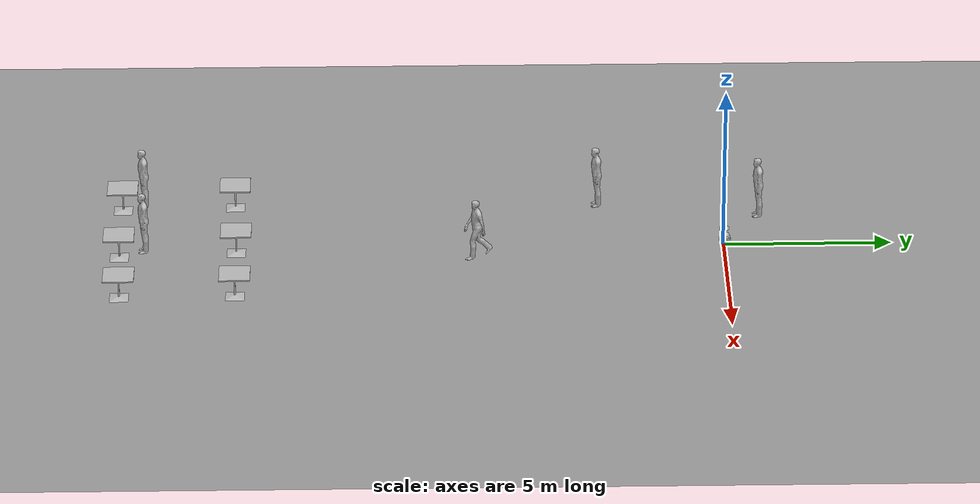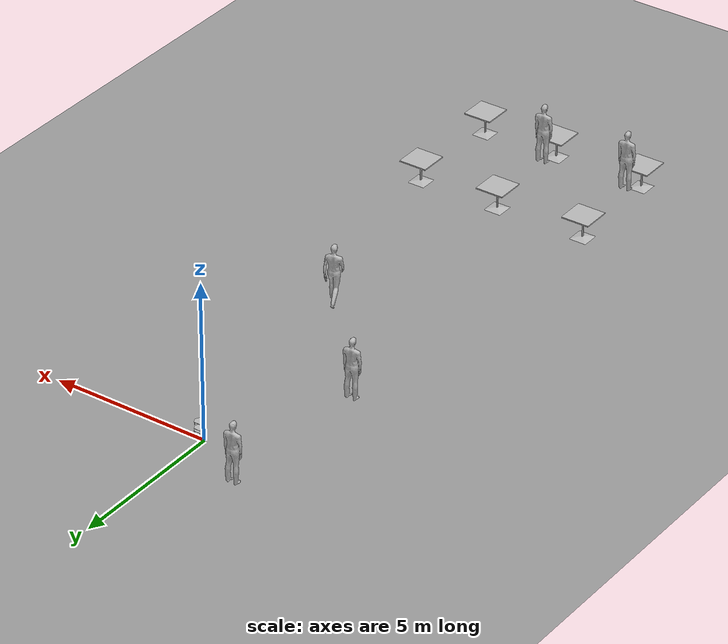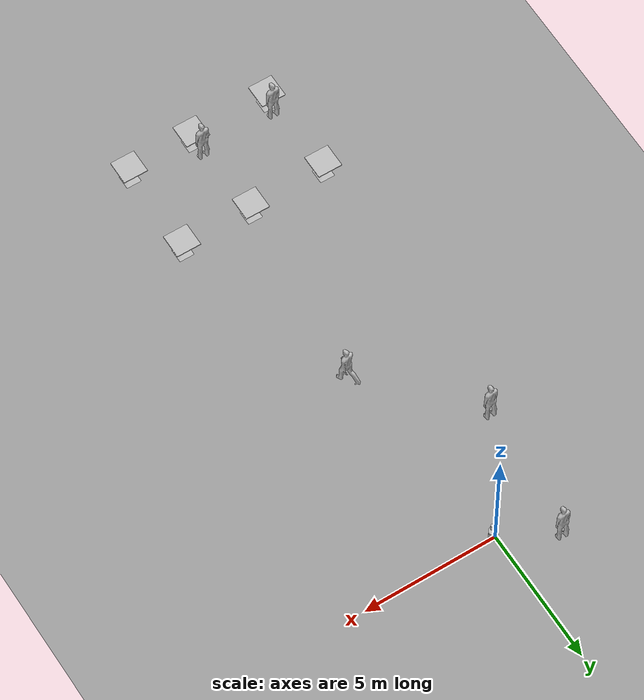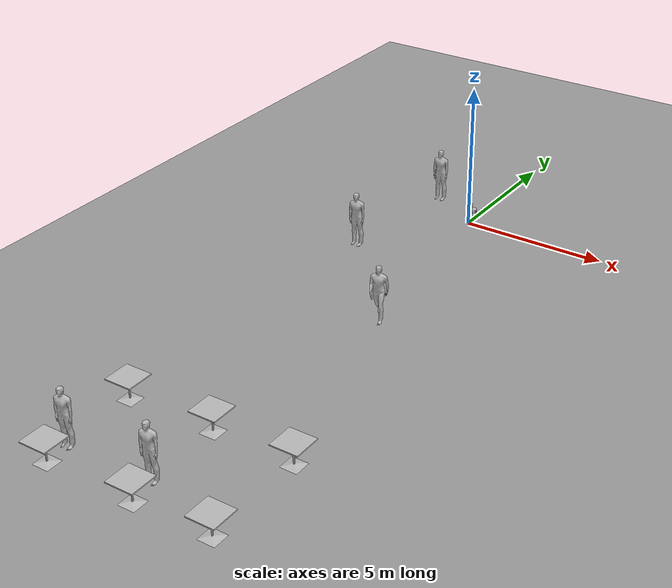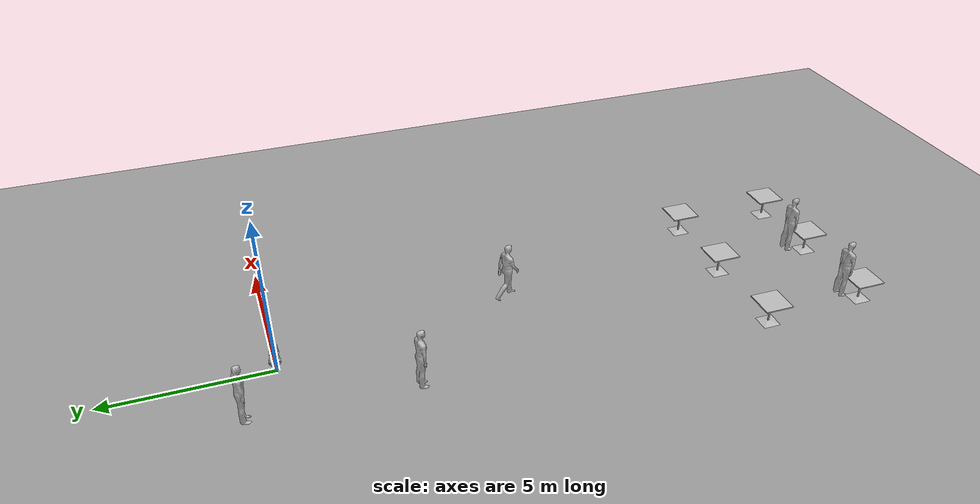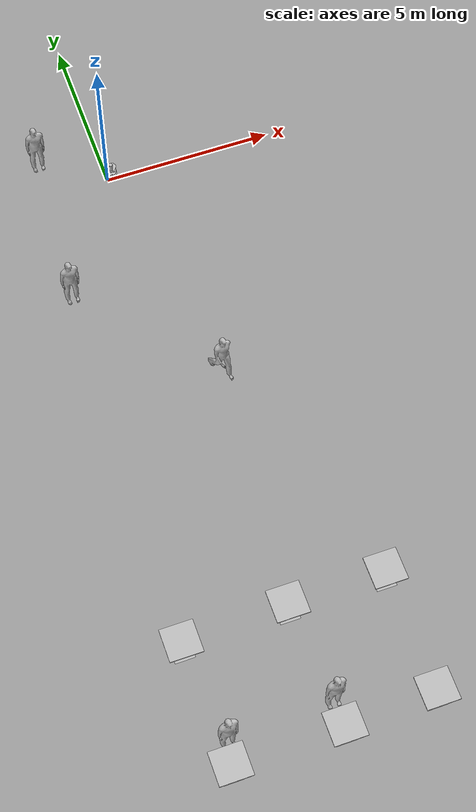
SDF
<sdf version="1.6">
 <world name="default">
  <light name="sun" type="directional">
   <pose>0 0 10 0 -0 0</pose>
   <diffuse>0.8 0.8 0.8 1</diffuse>
   <specular>0.2 0.2 0.2 1</specular>
   <attenuation>
    <range>1000</range>
    <constant>0.9</constant>
    <linear>0.01</linear>
    <quadratic>0.001</quadratic>
   </attenuation>
   <direction>0.5 0.1 -0.9</direction>
  </light>
  <scene><ambient>0.4 0.4 0.4 1</ambient><background>0.7 0.7 0.7 1</background><shadows>1</shadows></scene>
  <physics name="default_physics" default="0" type="ode">
   <max_step_size>0.01</max_step_size>
   <real_time_factor>1</real_time_factor>
   <real_time_update_rate>100</real_time_update_rate>
  </physics>
  <model name="ground_plane_0">
   <static>1</static>
   <link name="link">
    <collision name="collision">
     <geometry><plane><normal>0 0 1</normal><size>100 100</size></plane></geometry>
     <surface><friction><ode><mu>100</mu><mu2>50</mu2></ode></friction></surface>
    </collision>
    <visual name="visual">
     <cast_shadows>0</cast_shadows>
     <geometry><plane><normal>0 0 1</normal><size>100 100</size></plane></geometry>
     <material>
      <script><uri>file://media/materials/scripts/gazebo.material</uri><name>Gazebo/Grey</name></script>
     </material>
    </visual>
    <velocity_decay><linear>0</linear><angular>0</angular></velocity_decay>
   </link>
   <pose>0.497681 0 0 0 -0 0</pose>
  </model>
  <gravity>0 0 -9.8</gravity>
  <magnetic_field>6e-06 2.3e-05 -4.2e-05</magnetic_field>
  <atmosphere type="adiabatic"/>
  <spherical_coordinates>
   <surface_model>EARTH_WGS84</surface_model>
   <latitude_deg>0</latitude_deg>
   <longitude_deg>0</longitude_deg>
   <elevation>0</elevation>
   <heading_deg>0</heading_deg>
  </spherical_coordinates>
  <model name="mobile_base">
   <link name="base_footprint">
    <inertial>
     <pose>-0.002635 -4.1e-05 0.129243 0 -0 0</pose>
     <mass>4.6973</mass>
     <inertia>
      <ixx>0.1365</ixx>
      <ixy>-2.51802e-05</ixy>
      <ixz>0.0108194</ixz>
      <iyy>0.132157</iyy>
      <iyz>4.89572e-05</iyz>
      <izz>0.0741648</izz>
     </inertia>
    </inertial>
    <collision name="base_footprint_fixed_joint_lump__base_collision">
     <pose>0 0 0.06969 0 -0 0</pose>
     <geometry><cylinder><length>0.10938</length><radius>0.178</radius></cylinder></geometry>
    </collision>
    <collision name="base_footprint_fixed_joint_lump__camera_link_collision_1">
     <pose>-0.087 -0.0015 0.2972 0 -0 0</pose>
     <geometry><box><size>0.073 0.276 0.072</size></box></geometry>
    </collision>
    <collision name="base_footprint_fixed_joint_lump__caster_back_link_collision_2">
     <pose>-0.135 0 0.0192 -1.5708 0 0</pose>
     <geometry><cylinder><length>0.0176</length><radius>0.017</radius></cylinder></geometry>
     <surface>
      <contact><ode><kp>1e+06</kp><kd>100</kd><max_vel>1</max_vel><min_depth>0.001</min_depth></ode></contact>
      <friction><ode><mu>0</mu><mu2>0</mu2></ode></friction>
     </surface>
    </collision>
    <collision name="base_footprint_fixed_joint_lump__caster_front_link_collision_3">
     <pose>0.115 0 0.0172 -1.5708 0 0</pose>
     <geometry><cylinder><length>0.0176</length><radius>0.017</radius></cylinder></geometry>
     <surface>
      <contact><ode><kp>1e+06</kp><kd>100</kd><max_vel>1</max_vel><min_depth>0.001</min_depth></ode></contact>
      <friction><ode><mu>0</mu><mu2>0</mu2></ode></friction>
     </surface>
    </collision>
    <collision name="base_footprint_fixed_joint_lump__mount_asus_xtion_pro_link_collision_4">
     <pose>-0.1024 0 0.2822 0 -0 0</pose>
     <geometry><box><size>0.033 0.276 0.012</size></box></geometry>
    </collision>
    <collision name="base_footprint_fixed_joint_lump__plate_bottom_link_collision_5">
     <pose>0 0 0.1408 0 -0 0</pose>
     <geometry><cylinder><length>0.006</length><radius>0.17</radius></cylinder></geometry>
    </collision>
    <collision name="base_footprint_fixed_joint_lump__plate_middle_link_collision_6">
     <pose>0 0 0.1976 0 -0 0</pose>
     <geometry><cylinder><length>0.006</length><radius>0.17</radius></cylinder></geometry>
    </collision>
    <collision name="base_footprint_fixed_joint_lump__plate_top_link_collision_7">
     <pose>0 0 0.4068 0 -0 0</pose>
     <geometry><cylinder><length>0.006</length><radius>0.17</radius></cylinder></geometry>
    </collision>
    <collision name="base_footprint_fixed_joint_lump__pole_bottom_0_link_collision_8">
     <pose>0.12 0.082 0.113 0 -0 0</pose>
     <geometry><cylinder><length>0.0492</length><radius>0.006</radius></cylinder></geometry>
    </collision>
    <collision name="base_footprint_fixed_joint_lump__pole_bottom_1_link_collision_9">
     <pose>0.055 0.12 0.113 0 -0 0</pose>
     <geometry><cylinder><length>0.0492</length><radius>0.006</radius></cylinder></geometry>
    </collision>
    <collision name="base_footprint_fixed_joint_lump__pole_bottom_2_link_collision_10">
     <pose>-0.055 0.12 0.113 0 -0 0</pose>
     <geometry><cylinder><length>0.0492</length><radius>0.006</radius></cylinder></geometry>
    </collision>
    <collision name="base_footprint_fixed_joint_lump__pole_bottom_3_link_collision_11">
     <pose>0.12 -0.082 0.113 0 -0 0</pose>
     <geometry><cylinder><length>0.0492</length><radius>0.006</radius></cylinder></geometry>
    </collision>
    <collision name="base_footprint_fixed_joint_lump__pole_bottom_4_link_collision_12">
     <pose>0.055 -0.12 0.113 0 -0 0</pose>
     <geometry><cylinder><length>0.0492</length><radius>0.006</radius></cylinder></geometry>
    </collision>
    <collision name="base_footprint_fixed_joint_lump__pole_bottom_5_link_collision_13">
     <pose>-0.055 -0.12 0.113 0 -0 0</pose>
     <geometry><cylinder><length>0.0492</length><radius>0.006</radius></cylinder></geometry>
    </collision>
    <collision name="base_footprint_fixed_joint_lump__pole_kinect_0_link_collision_14">
     <pose>-0.1024 0.098 0.2474 0 -0 0</pose>
     <geometry><cylinder><length>0.0936</length><radius>0.006</radius></cylinder></geometry>
    </collision>
    <collision name="base_footprint_fixed_joint_lump__pole_kinect_1_link_collision_15">
     <pose>-0.1024 -0.098 0.2474 0 -0 0</pose>
     <geometry><cylinder><length>0.0936</length><radius>0.006</radius></cylinder></geometry>
    </collision>
    <collision name="base_footprint_fixed_joint_lump__pole_middle_0_link_collision_16">
     <pose>0.0381 0.1505 0.1742 0 -0 0</pose>
     <geometry><cylinder><length>0.0608</length><radius>0.006</radius></cylinder></geometry>
    </collision>
    <collision name="base_footprint_fixed_joint_lump__pole_middle_1_link_collision_17">
     <pose>0.0381 -0.1505 0.1742 0 -0 0</pose>
     <geometry><cylinder><length>0.0608</length><radius>0.006</radius></cylinder></geometry>
    </collision>
    <collision name="base_footprint_fixed_joint_lump__pole_middle_2_link_collision_18">
     <pose>-0.0381 0.1505 0.1742 0 -0 0</pose>
     <geometry><cylinder><length>0.0608</length><radius>0.006</radius></cylinder></geometry>
    </collision>
    <collision name="base_footprint_fixed_joint_lump__pole_middle_3_link_collision_19">
     <pose>-0.0381 -0.1505 0.1742 0 -0 0</pose>
     <geometry><cylinder><length>0.0608</length><radius>0.006</radius></cylinder></geometry>
    </collision>
    <collision name="base_footprint_fixed_joint_lump__pole_top_0_link_collision_20">
     <pose>0.0381 0.1505 0.3022 0 -0 0</pose>
     <geometry><cylinder><length>0.2032</length><radius>0.006</radius></cylinder></geometry>
    </collision>
    <collision name="base_footprint_fixed_joint_lump__pole_top_1_link_collision_21">
     <pose>0.0381 -0.1505 0.3022 0 -0 0</pose>
     <geometry><cylinder><length>0.2032</length><radius>0.006</radius></cylinder></geometry>
    </collision>
    <collision name="base_footprint_fixed_joint_lump__pole_top_2_link_collision_22">
     <pose>-0.0381 0.1505 0.3022 0 -0 0</pose>
     <geometry><cylinder><length>0.2032</length><radius>0.006</radius></cylinder></geometry>
    </collision>
    <collision name="base_footprint_fixed_joint_lump__pole_top_3_link_collision_23">
     <pose>-0.0381 -0.1505 0.3022 0 -0 0</pose>
     <geometry><cylinder><length>0.2032</length><radius>0.006</radius></cylinder></geometry>
    </collision>
    <visual name="base_footprint_fixed_joint_lump__base_link_visual">
     <pose>0.001 0 0.06219 0 -0 0</pose>
     <geometry>
      <mesh><scale>1 1 1</scale><uri>/opt/ros/kinetic/share/kobuki_description/meshes/main_body.dae</uri></mesh>
     </geometry>
     <material><script><uri>__default__</uri><name>__default__</name></script></material>
    </visual>
    <visual name="base_footprint_fixed_joint_lump__camera_link_visual_1">
     <pose>-0.102 0.002 0.3012 0 -0 0</pose>
     <geometry>
      <mesh>
       <scale>1 1 1</scale>
       <uri>/opt/ros/kinetic/share/turtlebot_description/meshes/sensors/xtion_pro_camera.dae</uri>
      </mesh>
     </geometry>
     <material><script><uri>__default__</uri><name>__default__</name></script></material>
    </visual>
    <visual name="base_footprint_fixed_joint_lump__mount_asus_xtion_pro_link_visual_2">
     <pose>-0.1024 0 0.2822 -1.5708 0 0</pose>
     <geometry>
      <mesh>
       <scale>1 1 1</scale>
       <uri>/opt/ros/kinetic/share/turtlebot_description/meshes/sensors/xtion_pro_stack.dae</uri>
      </mesh>
     </geometry>
    </visual>
    <visual name="base_footprint_fixed_joint_lump__plate_bottom_link_visual_3">
     <pose>0.02364 0 0.1408 0 -0 0</pose>
     <geometry>
      <mesh>
       <scale>1 1 1</scale>
       <uri>/opt/ros/kinetic/share/turtlebot_description/meshes/stacks/hexagons/plate_bottom.dae</uri>
      </mesh>
     </geometry>
    </visual>
    <visual name="base_footprint_fixed_joint_lump__plate_middle_link_visual_4">
     <pose>-0.01364 0 0.1976 0 -0 0</pose>
     <geometry>
      <mesh>
       <scale>1 1 1</scale>
       <uri>/opt/ros/kinetic/share/turtlebot_description/meshes/stacks/hexagons/plate_middle.dae</uri>
      </mesh>
     </geometry>
    </visual>
    <visual name="base_footprint_fixed_joint_lump__plate_top_link_visual_5">
     <pose>-0.01364 0 0.4068 0 -0 0</pose>
     <geometry>
      <mesh>
       <scale>1 1 1</scale>
       <uri>/opt/ros/kinetic/share/turtlebot_description/meshes/stacks/hexagons/plate_top.dae</uri>
      </mesh>
     </geometry>
    </visual>
    <visual name="base_footprint_fixed_joint_lump__pole_bottom_0_link_visual_6">
     <pose>0.12 0.082 0.113 0 -0 0</pose>
     <geometry>
      <mesh>
       <scale>1 1 1</scale>
       <uri>/opt/ros/kinetic/share/turtlebot_description/meshes/stacks/hexagons/pole_bottom.dae</uri>
      </mesh>
     </geometry>
    </visual>
    <visual name="base_footprint_fixed_joint_lump__pole_bottom_1_link_visual_7">
     <pose>0.055 0.12 0.113 0 -0 0</pose>
     <geometry>
      <mesh>
       <scale>1 1 1</scale>
       <uri>/opt/ros/kinetic/share/turtlebot_description/meshes/stacks/hexagons/pole_bottom.dae</uri>
      </mesh>
     </geometry>
    </visual>
    <visual name="base_footprint_fixed_joint_lump__pole_bottom_2_link_visual_8">
     <pose>-0.055 0.12 0.113 0 -0 0</pose>
     <geometry>
      <mesh>
       <scale>1 1 1</scale>
       <uri>/opt/ros/kinetic/share/turtlebot_description/meshes/stacks/hexagons/pole_bottom.dae</uri>
      </mesh>
     </geometry>
    </visual>
    <visual name="base_footprint_fixed_joint_lump__pole_bottom_3_link_visual_9">
     <pose>0.12 -0.082 0.113 0 -0 0</pose>
     <geometry>
      <mesh>
       <scale>1 1 1</scale>
       <uri>/opt/ros/kinetic/share/turtlebot_description/meshes/stacks/hexagons/pole_bottom.dae</uri>
      </mesh>
     </geometry>
    </visual>
    <visual name="base_footprint_fixed_joint_lump__pole_bottom_4_link_visual_10">
     <pose>0.055 -0.12 0.113 0 -0 0</pose>
     <geometry>
      <mesh>
       <scale>1 1 1</scale>
       <uri>/opt/ros/kinetic/share/turtlebot_description/meshes/stacks/hexagons/pole_bottom.dae</uri>
      </mesh>
     </geometry>
    </visual>
    <visual name="base_footprint_fixed_joint_lump__pole_bottom_5_link_visual_11">
     <pose>-0.055 -0.12 0.113 0 -0 0</pose>
     <geometry>
      <mesh>
       <scale>1 1 1</scale>
       <uri>/opt/ros/kinetic/share/turtlebot_description/meshes/stacks/hexagons/pole_bottom.dae</uri>
      </mesh>
     </geometry>
    </visual>
    <visual name="base_footprint_fixed_joint_lump__pole_kinect_0_link_visual_12">
     <pose>-0.1024 0.098 0.2374 0 -0 0</pose>
     <geometry>
      <mesh>
       <scale>1 1 1</scale>
       <uri>/opt/ros/kinetic/share/turtlebot_description/meshes/sensors/sensor_pole.dae</uri>
      </mesh>
     </geometry>
    </visual>
    <visual name="base_footprint_fixed_joint_lump__pole_kinect_1_link_visual_13">
     <pose>-0.1024 -0.098 0.2374 0 -0 0</pose>
     <geometry>
      <mesh>
       <scale>1 1 1</scale>
       <uri>/opt/ros/kinetic/share/turtlebot_description/meshes/sensors/sensor_pole.dae</uri>
      </mesh>
     </geometry>
    </visual>
    <visual name="base_footprint_fixed_joint_lump__pole_middle_0_link_visual_14">
     <pose>0.0381 0.1505 0.1742 3.14159 -0 3.14159</pose>
     <geometry>
      <mesh>
       <scale>1 1 1</scale>
       <uri>/opt/ros/kinetic/share/turtlebot_description/meshes/stacks/hexagons/pole_middle.dae</uri>
      </mesh>
     </geometry>
    </visual>
    <visual name="base_footprint_fixed_joint_lump__pole_middle_1_link_visual_15">
     <pose>0.0381 -0.1505 0.1742 3.14159 -0 3.14159</pose>
     <geometry>
      <mesh>
       <scale>1 1 1</scale>
       <uri>/opt/ros/kinetic/share/turtlebot_description/meshes/stacks/hexagons/pole_middle.dae</uri>
      </mesh>
     </geometry>
    </visual>
    <visual name="base_footprint_fixed_joint_lump__pole_middle_2_link_visual_16">
     <pose>-0.0381 0.1505 0.1742 3.14159 -0 3.14159</pose>
     <geometry>
      <mesh>
       <scale>1 1 1</scale>
       <uri>/opt/ros/kinetic/share/turtlebot_description/meshes/stacks/hexagons/pole_middle.dae</uri>
      </mesh>
     </geometry>
    </visual>
    <visual name="base_footprint_fixed_joint_lump__pole_middle_3_link_visual_17">
     <pose>-0.0381 -0.1505 0.1742 3.14159 -0 3.14159</pose>
     <geometry>
      <mesh>
       <scale>1 1 1</scale>
       <uri>/opt/ros/kinetic/share/turtlebot_description/meshes/stacks/hexagons/pole_middle.dae</uri>
      </mesh>
     </geometry>
    </visual>
    <visual name="base_footprint_fixed_joint_lump__pole_top_0_link_visual_18">
     <pose>0.0381 0.1505 0.3022 0 -0 0</pose>
     <geometry>
      <mesh>
       <scale>1 1 1</scale>
       <uri>/opt/ros/kinetic/share/turtlebot_description/meshes/stacks/hexagons/pole_top.dae</uri>
      </mesh>
     </geometry>
    </visual>
    <visual name="base_footprint_fixed_joint_lump__pole_top_1_link_visual_19">
     <pose>0.0381 -0.1505 0.3022 0 -0 0</pose>
     <geometry>
      <mesh>
       <scale>1 1 1</scale>
       <uri>/opt/ros/kinetic/share/turtlebot_description/meshes/stacks/hexagons/pole_top.dae</uri>
      </mesh>
     </geometry>
    </visual>
    <visual name="base_footprint_fixed_joint_lump__pole_top_2_link_visual_20">
     <pose>-0.0381 0.1505 0.3022 0 -0 0</pose>
     <geometry>
      <mesh>
       <scale>1 1 1</scale>
       <uri>/opt/ros/kinetic/share/turtlebot_description/meshes/stacks/hexagons/pole_top.dae</uri>
      </mesh>
     </geometry>
    </visual>
    <visual name="base_footprint_fixed_joint_lump__pole_top_3_link_visual_21">
     <pose>-0.0381 -0.1505 0.3022 0 -0 0</pose>
     <geometry>
      <mesh>
       <scale>1 1 1</scale>
       <uri>/opt/ros/kinetic/share/turtlebot_description/meshes/stacks/hexagons/pole_top.dae</uri>
      </mesh>
     </geometry>
    </visual>
    <sensor name="bumpers" type="contact">
     <always_on>1</always_on>
     <update_rate>50</update_rate>
     <visualize>1</visualize>
     <contact>
      <collision>base_footprint_fixed_joint_lump__base_collision</collision>
      <topic>__default_topic__</topic>
     </contact>
     <pose>0 0 0.0102 0 -0 0</pose>
    </sensor>
    <sensor name="camera" type="depth">
     <always_on>1</always_on>
     <update_rate>20</update_rate>
     <camera name="__default__">
      <horizontal_fov>1.0472</horizontal_fov>
      <image><format>B8G8R8</format><width>640</width><height>480</height></image>
      <clip><near>0.05</near><far>8</far></clip>
     </camera>
     <plugin name="kinect_camera_controller" filename="libgazebo_ros_openni_kinect.so">
      <cameraName>camera</cameraName>
      <alwaysOn>true</alwaysOn>
      <updateRate>10</updateRate>
      <imageTopicName>rgb/image_raw</imageTopicName>
      <depthImageTopicName>depth/image_raw</depthImageTopicName>
      <pointCloudTopicName>depth/points</pointCloudTopicName>
      <cameraInfoTopicName>rgb/camera_info</cameraInfoTopicName>
      <depthImageCameraInfoTopicName>depth/camera_info</depthImageCameraInfoTopicName>
      <frameName>camera_depth_optical_frame</frameName>
      <baseline>0.1</baseline>
      <distortion_k1>0.0</distortion_k1>
      <distortion_k2>0.0</distortion_k2>
      <distortion_k3>0.0</distortion_k3>
      <distortion_t1>0.0</distortion_t1>
      <distortion_t2>0.0</distortion_t2>
      <pointCloudCutoff>0.4</pointCloudCutoff>
      <robotNamespace>/</robotNamespace>
     </plugin>
     <pose>-0.087 -0.0015 0.2972 0 -0 0</pose>
    </sensor>
    <sensor name="cliff_sensor_front" type="ray">
     <always_on>1</always_on>
     <update_rate>50</update_rate>
     <visualize>1</visualize>
     <ray>
      <scan>
       <horizontal>
        <samples>50</samples>
        <resolution>1</resolution>
        <min_angle>-0.0436</min_angle>
        <max_angle>0.0436</max_angle>
       </horizontal>
       <vertical><samples>1</samples><min_angle>0</min_angle><max_angle>0</max_angle></vertical>
      </scan>
      <range><min>0.01</min><max>0.15</max><resolution>1</resolution></range>
     </ray>
     <pose>0.156 0 0.0316 3.14159 1.57079 3.14159</pose>
    </sensor>
    <sensor name="cliff_sensor_left" type="ray">
     <always_on>1</always_on>
     <update_rate>50</update_rate>
     <visualize>1</visualize>
     <ray>
      <scan>
       <horizontal>
        <samples>50</samples>
        <resolution>1</resolution>
        <min_angle>-0.0436</min_angle>
        <max_angle>0.0436</max_angle>
       </horizontal>
       <vertical><samples>1</samples><min_angle>0</min_angle><max_angle>0</max_angle></vertical>
      </scan>
      <range><min>0.01</min><max>0.15</max><resolution>1</resolution></range>
     </ray>
     <pose>0.08734 0.13601 0.0316 3.14159 1.57079 3.14159</pose>
    </sensor>
    <sensor name="cliff_sensor_right" type="ray">
     <always_on>1</always_on>
     <update_rate>50</update_rate>
     <visualize>1</visualize>
     <ray>
      <scan>
       <horizontal>
        <samples>50</samples>
        <resolution>1</resolution>
        <min_angle>-0.0436</min_angle>
        <max_angle>0.0436</max_angle>
       </horizontal>
       <vertical><samples>1</samples><min_angle>0</min_angle><max_angle>0</max_angle></vertical>
      </scan>
      <range><min>0.01</min><max>0.15</max><resolution>1</resolution></range>
     </ray>
     <pose>0.085 -0.13601 0.0316 3.14159 1.57079 3.14159</pose>
    </sensor>
    <sensor name="imu" type="imu">
     <always_on>1</always_on>
     <update_rate>50</update_rate>
     <visualize>0</visualize>
     <imu>
      <angular_velocity>
       <x>
        <noise type="gaussian">
         <mean>0</mean>
         <stddev>1.96e-06</stddev>
         <bias_mean>0</bias_mean>
         <bias_stddev>0</bias_stddev>
        </noise>
       </x>
       <y>
        <noise type="gaussian">
         <mean>0</mean>
         <stddev>1.96e-06</stddev>
         <bias_mean>0</bias_mean>
         <bias_stddev>0</bias_stddev>
        </noise>
       </y>
       <z>
        <noise type="gaussian">
         <mean>0</mean>
         <stddev>1.96e-06</stddev>
         <bias_mean>0</bias_mean>
         <bias_stddev>0</bias_stddev>
        </noise>
       </z>
      </angular_velocity>
      <linear_acceleration>
       <x>
        <noise type="gaussian">
         <mean>0</mean>
         <stddev>0.017</stddev>
         <bias_mean>0.1</bias_mean>
         <bias_stddev>0.001</bias_stddev>
        </noise>
       </x>
       <y>
        <noise type="gaussian">
         <mean>0</mean>
         <stddev>0.017</stddev>
         <bias_mean>0.1</bias_mean>
         <bias_stddev>0.001</bias_stddev>
        </noise>
       </y>
       <z>
        <noise type="gaussian">
         <mean>0</mean>
         <stddev>0.017</stddev>
         <bias_mean>0.1</bias_mean>
         <bias_stddev>0.001</bias_stddev>
        </noise>
       </z>
      </linear_acceleration>
     </imu>
     <pose>0.056 0.062 0.0304 0 -0 0</pose>
    </sensor>
   </link>
   <link name="wheel_left_link">
    <pose>0 0.115 0.0352 -1.5708 0 0</pose>
    <inertial>
     <mass>0.01</mass>
     <inertia><ixx>0.001</ixx><ixy>0</ixy><ixz>0</ixz><iyy>0.001</iyy><iyz>0</iyz><izz>0.001</izz></inertia>
    </inertial>
    <collision name="wheel_left_link_collision">
     <geometry><cylinder><length>0.0206</length><radius>0.0352</radius></cylinder></geometry>
     <surface>
      <contact><ode><kp>1e+06</kp><kd>100</kd><max_vel>1</max_vel><min_depth>0.001</min_depth></ode></contact>
      <friction><ode><mu>1</mu><mu2>1</mu2></ode></friction>
     </surface>
    </collision>
    <visual name="wheel_left_link_visual">
     <geometry>
      <mesh><scale>1 1 1</scale><uri>/opt/ros/kinetic/share/kobuki_description/meshes/wheel.dae</uri></mesh>
     </geometry>
     <material><script><uri>__default__</uri><name>__default__</name></script></material>
    </visual>
   </link>
   <joint name="wheel_left_joint" type="revolute">
    <child>wheel_left_link</child>
    <parent>base_footprint</parent>
    <axis>
     <xyz>0 1 0</xyz>
     <limit><lower>-1e+16</lower><upper>1e+16</upper></limit>
     <dynamics><spring_reference>0</spring_reference><spring_stiffness>0</spring_stiffness></dynamics>
     <use_parent_model_frame>1</use_parent_model_frame>
    </axis>
   </joint>
   <link name="wheel_right_link">
    <pose>0 -0.115 0.0352 -1.5708 0 0</pose>
    <inertial>
     <mass>0.01</mass>
     <inertia><ixx>0.001</ixx><ixy>0</ixy><ixz>0</ixz><iyy>0.001</iyy><iyz>0</iyz><izz>0.001</izz></inertia>
    </inertial>
    <collision name="wheel_right_link_collision">
     <geometry><cylinder><length>0.0206</length><radius>0.035</radius></cylinder></geometry>
     <surface>
      <contact><ode><kp>1e+06</kp><kd>100</kd><max_vel>1</max_vel><min_depth>0.001</min_depth></ode></contact>
      <friction><ode><mu>1</mu><mu2>1</mu2></ode></friction>
     </surface>
    </collision>
    <visual name="wheel_right_link_visual">
     <geometry>
      <mesh><scale>1 1 1</scale><uri>/opt/ros/kinetic/share/kobuki_description/meshes/wheel.dae</uri></mesh>
     </geometry>
     <material><script><uri>__default__</uri><name>__default__</name></script></material>
    </visual>
   </link>
   <joint name="wheel_right_joint" type="revolute">
    <child>wheel_right_link</child>
    <parent>base_footprint</parent>
    <axis>
     <xyz>0 1 0</xyz>
     <limit><lower>-1e+16</lower><upper>1e+16</upper></limit>
     <dynamics><spring_reference>0</spring_reference><spring_stiffness>0</spring_stiffness></dynamics>
     <use_parent_model_frame>1</use_parent_model_frame>
    </axis>
   </joint>
   <static>0</static>
   <plugin name="kobuki_controller" filename="libgazebo_ros_kobuki.so">
    <publish_tf>1</publish_tf>
    <left_wheel_joint_name>wheel_left_joint</left_wheel_joint_name>
    <right_wheel_joint_name>wheel_right_joint</right_wheel_joint_name>
    <wheel_separation>.230</wheel_separation>
    <wheel_diameter>0.070</wheel_diameter>
    <torque>1.0</torque>
    <velocity_command_timeout>0.6</velocity_command_timeout>
    <cliff_sensor_left_name>cliff_sensor_left</cliff_sensor_left_name>
    <cliff_sensor_center_name>cliff_sensor_front</cliff_sensor_center_name>
    <cliff_sensor_right_name>cliff_sensor_right</cliff_sensor_right_name>
    <cliff_detection_threshold>0.04</cliff_detection_threshold>
    <bumper_name>bumpers</bumper_name>
    <imu_name>imu</imu_name>
    <robotNamespace>/</robotNamespace>
   </plugin>
   <pose>0.120186 0.018817 0.188668 0.000232 -0.008001 1.53051</pose>
  </model>
  <model name="beer_0">
   <link name="link">
    <pose>0 0 0.115 0 -0 0</pose>
    <inertial>
     <mass>0.39</mass>
     <inertia><ixx>0.00058</ixx><ixy>0</ixy><ixz>0</ixz><iyy>0.00058</iyy><iyz>0</iyz><izz>0.00019</izz></inertia>
    </inertial>
    <collision name="collision">
     <geometry><cylinder><radius>0.055</radius><length>0.23</length></cylinder></geometry>
    </collision>
    <visual name="visual">
     <geometry><cylinder><radius>0.055</radius><length>0.23</length></cylinder></geometry>
     <material>
      <script>
       <uri>model://beer/materials/scripts</uri>
       <uri>model://beer/materials/textures</uri>
       <name>Beer/Diffuse</name>
      </script>
     </material>
    </visual>
   </link>
   <pose>0.11703 -0.069837 0.597684 -0.00726 0.003874 -2.85751</pose>
  </model>
  <model name="cafe_table">
   <static>1</static>
   <link name="link">
    <collision name="surface">
     <pose>0 0 0.755 0 -0 0</pose>
     <geometry><box><size>0.913 0.913 0.04</size></box></geometry>
    </collision>
    <collision name="column">
     <pose>0 0 0.37 0 -0 0</pose>
     <geometry><box><size>0.042 0.042 0.74</size></box></geometry>
    </collision>
    <collision name="base">
     <pose>0 0 0.02 0 -0 0</pose>
     <geometry><box><size>0.56 0.56 0.04</size></box></geometry>
    </collision>
    <visual name="visual">
     <geometry><mesh><uri>model://cafe_table/meshes/cafe_table.dae</uri><scale>1 1 1</scale></mesh></geometry>
    </visual>
   </link>
   <pose>-2.49615 -17.9845 0 0 -0 0</pose>
  </model>
  <model name="cafe_table_1">
   <static>1</static>
   <link name="link">
    <collision name="surface">
     <pose>0 0 0.755 0 -0 0</pose>
     <geometry><box><size>0.913 0.913 0.04</size></box></geometry>
    </collision>
    <collision name="column">
     <pose>0 0 0.37 0 -0 0</pose>
     <geometry><box><size>0.042 0.042 0.74</size></box></geometry>
    </collision>
    <collision name="base">
     <pose>0 0 0.02 0 -0 0</pose>
     <geometry><box><size>0.56 0.56 0.04</size></box></geometry>
    </collision>
    <visual name="visual">
     <geometry><mesh><uri>model://cafe_table/meshes/cafe_table.dae</uri><scale>1 1 1</scale></mesh></geometry>
    </visual>
   </link>
   <pose>2.99513 -17.8988 0 0 -0 0</pose>
  </model>
  <model name="cafe_table_2">
   <static>1</static>
   <link name="link">
    <collision name="surface">
     <pose>0 0 0.755 0 -0 0</pose>
     <geometry><box><size>0.913 0.913 0.04</size></box></geometry>
    </collision>
    <collision name="column">
     <pose>0 0 0.37 0 -0 0</pose>
     <geometry><box><size>0.042 0.042 0.74</size></box></geometry>
    </collision>
    <collision name="base">
     <pose>0 0 0.02 0 -0 0</pose>
     <geometry><box><size>0.56 0.56 0.04</size></box></geometry>
    </collision>
    <visual name="visual">
     <geometry><mesh><uri>model://cafe_table/meshes/cafe_table.dae</uri><scale>1 1 1</scale></mesh></geometry>
    </visual>
   </link>
   <pose>-2.6266 -14.6057 0 0 -0 0</pose>
  </model>
  <model name="cafe_table_3">
   <static>1</static>
   <link name="link">
    <collision name="surface">
     <pose>0 0 0.755 0 -0 0</pose>
     <geometry><box><size>0.913 0.913 0.04</size></box></geometry>
    </collision>
    <collision name="column">
     <pose>0 0 0.37 0 -0 0</pose>
     <geometry><box><size>0.042 0.042 0.74</size></box></geometry>
    </collision>
    <collision name="base">
     <pose>0 0 0.02 0 -0 0</pose>
     <geometry><box><size>0.56 0.56 0.04</size></box></geometry>
    </collision>
    <visual name="visual">
     <geometry><mesh><uri>model://cafe_table/meshes/cafe_table.dae</uri><scale>1 1 1</scale></mesh></geometry>
    </visual>
   </link>
   <pose>0.283346 -14.5175 0 0 -0 0</pose>
  </model>
  <model name="cafe_table_4">
   <static>1</static>
   <link name="link">
    <collision name="surface">
     <pose>0 0 0.755 0 -0 0</pose>
     <geometry><box><size>0.913 0.913 0.04</size></box></geometry>
    </collision>
    <collision name="column">
     <pose>0 0 0.37 0 -0 0</pose>
     <geometry><box><size>0.042 0.042 0.74</size></box></geometry>
    </collision>
    <collision name="base">
     <pose>0 0 0.02 0 -0 0</pose>
     <geometry><box><size>0.56 0.56 0.04</size></box></geometry>
    </collision>
    <visual name="visual">
     <geometry><mesh><uri>model://cafe_table/meshes/cafe_table.dae</uri><scale>1 1 1</scale></mesh></geometry>
    </visual>
   </link>
   <pose>2.98102 -14.5008 0 0 -0 0</pose>
  </model>
  <model name="person_standing">
   <link name="link">
    <inertial>
     <pose>0 -0.1 0.95 0 -0 0</pose>
     <mass>80</mass>
     <inertia><ixx>24.88</ixx><ixy>0</ixy><ixz>0</ixz><iyy>25.73</iyy><iyz>0</iyz><izz>2.48</izz></inertia>
    </inertial>
    <collision name="bottom">
     <pose>0 -0.1 0.01 0 -0 0</pose>
     <geometry><box><size>0.5 0.35 0.02</size></box></geometry>
    </collision>
    <collision name="person">
     <pose>0 0 0.02 0.04 -0 0</pose>
     <geometry><mesh><uri>model://person_standing/meshes/standing.dae</uri><scale>1 1 1</scale></mesh></geometry>
    </collision>
    <visual name="visual">
     <pose>0 0 0.02 0.04 -0 0</pose>
     <geometry><mesh><uri>model://person_standing/meshes/standing.dae</uri><scale>1 1 1</scale></mesh></geometry>
    </visual>
   </link>
   <pose>-2.21289 -3.65289 0.189911 0.000402 1.9e-05 0.061318</pose>
  </model>
  <model name="person_walking">
   <link name="link">
    <inertial>
     <pose>0 0 0.95 0 -0 0</pose>
     <mass>80</mass>
     <inertia><ixx>27.82</ixx><ixy>0</ixy><ixz>0</ixz><iyy>24.88</iyy><iyz>0</iyz><izz>4.57</izz></inertia>
    </inertial>
    <collision name="bottom">
     <pose>0 0 0.01 0 -0 0</pose>
     <geometry><box><size>0.35 0.75 0.02</size></box></geometry>
    </collision>
    <collision name="person">
     <pose>0 0 -0.02 0 -0 0</pose>
     <geometry><mesh><uri>model://person_walking/meshes/walking.dae</uri><scale>1 1 1</scale></mesh></geometry>
    </collision>
    <visual name="visual">
     <pose>0 0 -0.02 0 -0 0</pose>
     <geometry><mesh><uri>model://person_walking/meshes/walking.dae</uri><scale>1 1 1</scale></mesh></geometry>
    </visual>
   </link>
   <pose>1.01019 -7.34924 0.189729 0.000149 8.8e-05 0.272626</pose>
  </model>
  <model name="person_standing_0">
   <link name="link">
    <inertial>
     <pose>0 -0.1 0.95 0 -0 0</pose>
     <mass>80</mass>
     <inertia><ixx>24.88</ixx><ixy>0</ixy><ixz>0</ixz><iyy>25.73</iyy><iyz>0</iyz><izz>2.48</izz></inertia>
    </inertial>
    <collision name="bottom">
     <pose>0 -0.1 0.01 0 -0 0</pose>
     <geometry><box><size>0.5 0.35 0.02</size></box></geometry>
    </collision>
    <collision name="person">
     <pose>0 0 0.02 0.04 -0 0</pose>
     <geometry><mesh><uri>model://person_standing/meshes/standing.dae</uri><scale>1 1 1</scale></mesh></geometry>
    </collision>
    <visual name="visual">
     <pose>0 0 0.02 0.04 -0 0</pose>
     <geometry><mesh><uri>model://person_standing/meshes/standing.dae</uri><scale>1 1 1</scale></mesh></geometry>
    </visual>
   </link>
   <pose>-2.34499 -17.2652 0.189768 8.7e-05 0.000102 0.050915</pose>
  </model>
  <model name="person_standing_1">
   <link name="link">
    <inertial>
     <pose>0 -0.1 0.95 0 -0 0</pose>
     <mass>80</mass>
     <inertia><ixx>24.88</ixx><ixy>0</ixy><ixz>0</ixz><iyy>25.73</iyy><iyz>0</iyz><izz>2.48</izz></inertia>
    </inertial>
    <collision name="bottom">
     <pose>0 -0.1 0.01 0 -0 0</pose>
     <geometry><box><size>0.5 0.35 0.02</size></box></geometry>
    </collision>
    <collision name="person">
     <pose>0 0 0.02 0.04 -0 0</pose>
     <geometry><mesh><uri>model://person_standing/meshes/standing.dae</uri><scale>1 1 1</scale></mesh></geometry>
    </collision>
    <visual name="visual">
     <pose>0 0 0.02 0.04 -0 0</pose>
     <geometry><mesh><uri>model://person_standing/meshes/standing.dae</uri><scale>1 1 1</scale></mesh></geometry>
    </visual>
   </link>
   <pose>0.493469 -17.1624 0.189753 -6.4e-05 0.000116 0.059182</pose>
  </model>
  <model name="person_standing_2">
   <link name="link">
    <inertial>
     <pose>0 -0.1 0.95 0 -0 0</pose>
     <mass>80</mass>
     <inertia><ixx>24.88</ixx><ixy>0</ixy><ixz>0</ixz><iyy>25.73</iyy><iyz>0</iyz><izz>2.48</izz></inertia>
    </inertial>
    <collision name="bottom">
     <pose>0 -0.1 0.01 0 -0 0</pose>
     <geometry><box><size>0.5 0.35 0.02</size></box></geometry>
    </collision>
    <collision name="person">
     <pose>0 0 0.02 0.04 -0 0</pose>
     <geometry><mesh><uri>model://person_standing/meshes/standing.dae</uri><scale>1 1 1</scale></mesh></geometry>
    </collision>
    <visual name="visual">
     <pose>0 0 0.02 0.04 -0 0</pose>
     <geometry><mesh><uri>model://person_standing/meshes/standing.dae</uri><scale>1 1 1</scale></mesh></geometry>
    </visual>
   </link>
   <pose>-1.81124 1.19462 -2.2e-05 -7.1e-05 0.000111 0.005</pose>
  </model>
  <light name="user_spot_light_0" type="spot">
   <pose>-2.46075 -17.9854 1 0 -0 0</pose>
   <diffuse>0.5 0.5 0.5 1</diffuse>
   <specular>0.1 0.1 0.1 1</specular>
   <direction>0 0 -1</direction>
   <attenuation>
    <range>20</range>
    <constant>0.5</constant>
    <linear>0.01</linear>
    <quadratic>0.001</quadratic>
   </attenuation>
   <cast_shadows>0</cast_shadows>
   <spot><inner_angle>0.6</inner_angle><outer_angle>1</outer_angle><falloff>1</falloff></spot>
  </light>
  <model name="cafe_table_5">
   <static>1</static>
   <link name="link">
    <collision name="surface">
     <pose>0 0 0.755 0 -0 0</pose>
     <geometry><box><size>0.913 0.913 0.04</size></box></geometry>
    </collision>
    <collision name="column">
     <pose>0 0 0.37 0 -0 0</pose>
     <geometry><box><size>0.042 0.042 0.74</size></box></geometry>
    </collision>
    <collision name="base">
     <pose>0 0 0.02 0 -0 0</pose>
     <geometry><box><size>0.56 0.56 0.04</size></box></geometry>
    </collision>
    <visual name="visual">
     <geometry><mesh><uri>model://cafe_table/meshes/cafe_table.dae</uri><scale>1 1 1</scale></mesh></geometry>
    </visual>
   </link>
   <pose>0.494469 -17.9873 0 0 -0 0</pose>
  </model>
  <light name="user_spot_light_1" type="spot">
   <pose>0.287729 -17.9397 1 0 -0 0</pose>
   <diffuse>0.5 0.5 0.5 1</diffuse>
   <specular>0.1 0.1 0.1 1</specular>
   <direction>0 0 -1</direction>
   <attenuation>
    <range>20</range>
    <constant>0.5</constant>
    <linear>0.01</linear>
    <quadratic>0.001</quadratic>
   </attenuation>
   <cast_shadows>0</cast_shadows>
   <spot><inner_angle>0.6</inner_angle><outer_angle>1</outer_angle><falloff>1</falloff></spot>
  </light>
  <light name="user_point_light_0" type="point">
   <pose>-0.705889 -0.195295 1 0 -0 0</pose>
   <diffuse>0.5 0.5 0.5 1</diffuse>
   <specular>0.1 0.1 0.1 1</specular>
   <attenuation>
    <range>20</range>
    <constant>0.5</constant>
    <linear>0.01</linear>
    <quadratic>0.001</quadratic>
   </attenuation>
   <cast_shadows>0</cast_shadows>
   <direction>0 0 -1</direction>
  </light>
  <light name="user_point_light_1" type="point">
   <pose>-3.25051 -7.19611 1 0 -0 0</pose>
   <diffuse>0.5 0.5 0.5 1</diffuse>
   <specular>0.1 0.1 0.1 1</specular>
   <attenuation>
    <range>20</range>
    <constant>0.5</constant>
    <linear>0.01</linear>
    <quadratic>0.001</quadratic>
   </attenuation>
   <cast_shadows>0</cast_shadows>
   <direction>0 0 -1</direction>
  </light>
  <light name="user_point_light_2" type="point">
   <pose>2.96455 -7.07222 1 0 -0 0</pose>
   <diffuse>0.5 0.5 0.5 1</diffuse>
   <specular>0.1 0.1 0.1 1</specular>
   <attenuation>
    <range>20</range>
    <constant>0.5</constant>
    <linear>0.01</linear>
    <quadratic>0.001</quadratic>
   </attenuation>
   <cast_shadows>0</cast_shadows>
   <direction>0 0 -1</direction>
  </light>
  <light name="user_spot_light_2" type="spot">
   <pose>-2.62877 -14.6483 1 0 -0 0</pose>
   <diffuse>0.5 0.5 0.5 1</diffuse>
   <specular>0.1 0.1 0.1 1</specular>
   <direction>0 0 -1</direction>
   <attenuation>
    <range>20</range>
    <constant>0.5</constant>
    <linear>0.01</linear>
    <quadratic>0.001</quadratic>
   </attenuation>
   <cast_shadows>0</cast_shadows>
   <spot><inner_angle>0.6</inner_angle><outer_angle>1</outer_angle><falloff>1</falloff></spot>
  </light>
  <light name="user_spot_light_3" type="spot">
   <pose>0.291452 -14.5703 1 0 -0 0</pose>
   <diffuse>0.5 0.5 0.5 1</diffuse>
   <specular>0.1 0.1 0.1 1</specular>
   <direction>0 0 -1</direction>
   <attenuation>
    <range>20</range>
    <constant>0.5</constant>
    <linear>0.01</linear>
    <quadratic>0.001</quadratic>
   </attenuation>
   <cast_shadows>0</cast_shadows>
   <spot><inner_angle>0.6</inner_angle><outer_angle>1</outer_angle><falloff>1</falloff></spot>
  </light>
  <light name="user_spot_light_4" type="spot">
   <pose>2.97651 -14.5228 1 0 -0 0</pose>
   <diffuse>0.5 0.5 0.5 1</diffuse>
   <specular>0.1 0.1 0.1 1</specular>
   <direction>0 0 -1</direction>
   <attenuation>
    <range>20</range>
    <constant>0.5</constant>
    <linear>0.01</linear>
    <quadratic>0.001</quadratic>
   </attenuation>
   <cast_shadows>0</cast_shadows>
   <spot><inner_angle>0.6</inner_angle><outer_angle>1</outer_angle><falloff>1</falloff></spot>
  </light>
  <light name="user_spot_light_5" type="spot">
   <pose>2.98461 -17.9031 1 0 -0 0</pose>
   <diffuse>0.5 0.5 0.5 1</diffuse>
   <specular>0.1 0.1 0.1 1</specular>
   <direction>0 0 -1</direction>
   <attenuation>
    <range>20</range>
    <constant>0.5</constant>
    <linear>0.01</linear>
    <quadratic>0.001</quadratic>
   </attenuation>
   <cast_shadows>0</cast_shadows>
   <spot><inner_angle>0.6</inner_angle><outer_angle>1</outer_angle><falloff>1</falloff></spot>
  </light>
 </world>
</sdf>
